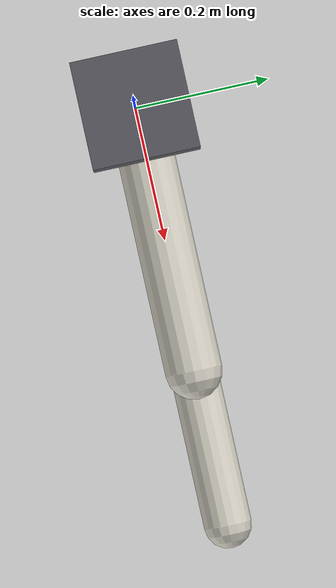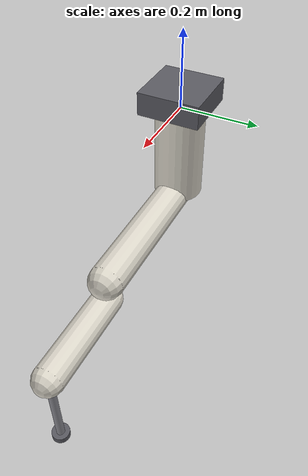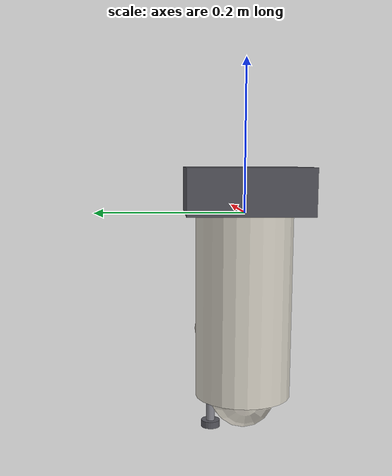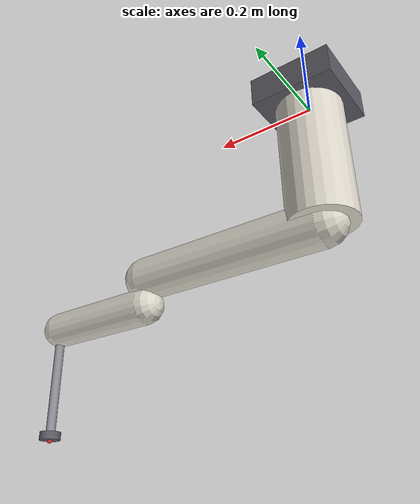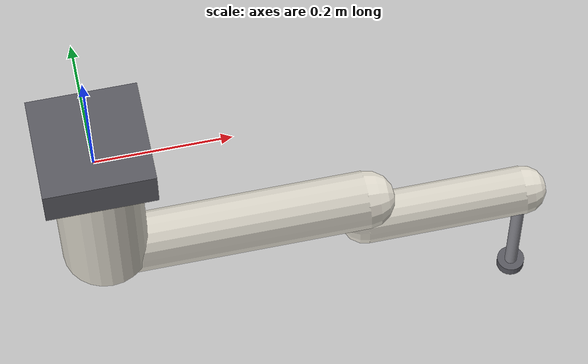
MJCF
<mujoco model="irb910sc_3_065">
  <compiler angle="radian" autolimits="true"/>

  <default>
    <default class="scara">
      <joint frictionloss="0.1" armature="0.1" damping="1.0"/>
      <position kp="2000" dampratio="1"/>
      <geom type="capsule" density="700" rgba="0.87 0.85 0.80 1"/>

      <!-- Axis 1: shoulder rotation, +/-140 deg, 415 deg/s. -->
      <default class="axis1">
        <joint type="hinge" axis="0 0 1" range="-2.443461 2.443461"/>
        <position forcerange="-300 300"/>
      </default>
      <!-- Axis 2: elbow rotation, +/-150 deg, 659 deg/s. -->
      <default class="axis2">
        <joint type="hinge" axis="0 0 1" range="-2.617994 2.617994"/>
        <position forcerange="-200 200"/>
      </default>
      <!-- Axis 3: spline up and down, 180 mm stroke, 1.02 m/s, 250 N down force.
           Inverted mounting points it downward, so travel runs 0 to -0.180. -->
      <default class="axis3">
        <joint type="slide" axis="0 0 1" range="-0.180 0.0"/>
        <position forcerange="-250 250" kp="8000"/>
      </default>
      <!-- Axis 4: spline rotation, +/-400 deg, 2400 deg/s. This is the axis an
           OpenMANIPULATOR-X does not have, and the reason a SCARA can align a
           jaw or a cup to an object's minor axis. -->
      <default class="axis4">
        <joint type="hinge" axis="0 0 1" range="-6.981317 6.981317"/>
        <position forcerange="-40 40" kp="200"/>
      </default>
    </default>
  </default>

  <worldbody>
    <body name="scara_base" childclass="scara">
      <!-- Base housing: 160 x 160 mm footprint, hanging from its mount. -->
      <geom name="scara_mount" type="box" size="0.080 0.080 0.030"
            pos="0 0 0.030" rgba="0.35 0.35 0.38 1"/>
      <!-- Column. The published overall height is 620 mm; the portion below the
           mounting face that carries axis 1 is 251 mm. -->
      <geom name="scara_column" type="cylinder" size="0.065 0.1255"
            pos="0 0 -0.1255"/>

      <body name="scara_arm1" pos="0 0 -0.251">
        <joint name="Joint1" class="axis1"/>
        <!-- Arm 1 spans 400 mm from axis 1 to axis 2 on the 0.65 m variant.
             ABB ships 200 mm on the 0.45 and 300 mm on the 0.55. -->
        <geom name="scara_arm1_link" fromto="0 0 0  0.400 0 0" size="0.045"/>

        <body name="scara_arm2" pos="0.400 0 -0.060">
          <joint name="Joint2" class="axis2"/>
          <!-- Arm 2 spans 250 mm on every variant. -->
          <geom name="scara_arm2_link" fromto="0 0 0  0.250 0 0" size="0.038"/>

          <body name="scara_spline" pos="0.250 0 0">
            <joint name="Joint3" class="axis3"/>
            <joint name="Joint4" class="axis4"/>
            <!-- The ball screw spline, 20 mm shaft. Drawn over the full stroke
                 so a retracted tool is visible above the work surface. -->
            <geom name="scara_spline_shaft" type="cylinder" size="0.010 0.115"
                  pos="0 0 -0.115" rgba="0.55 0.55 0.58 1"/>

            <!-- Tool flange. An end effector attaches here; the site is what
                 clave.world.arm reads as the tool point. -->
            <body name="scara_flange" pos="0 0 -0.230">
              <geom name="scara_flange_plate" type="cylinder" size="0.022 0.008"
                    rgba="0.35 0.35 0.38 1"/>
              <site name="tool_point" pos="0 0 -0.008" size="0.006"
                    rgba="0.9 0.2 0.2 1"/>
            </body>
          </body>
        </body>
      </body>
    </body>
  </worldbody>

  <contact>
    <exclude body1="scara_base" body2="scara_arm1"/>
    <exclude body1="scara_arm1" body2="scara_arm2"/>
    <exclude body1="scara_arm2" body2="scara_spline"/>
    <exclude body1="scara_spline" body2="scara_flange"/>
    <exclude body1="scara_base" body2="scara_arm2"/>
  </contact>

  <actuator>
    <position class="axis1" name="Joint1" joint="Joint1" inheritrange="1"/>
    <position class="axis2" name="Joint2" joint="Joint2" inheritrange="1"/>
    <position class="axis3" name="Joint3" joint="Joint3" inheritrange="1"/>
    <position class="axis4" name="Joint4" joint="Joint4" inheritrange="1"/>
  </actuator>
</mujoco>
